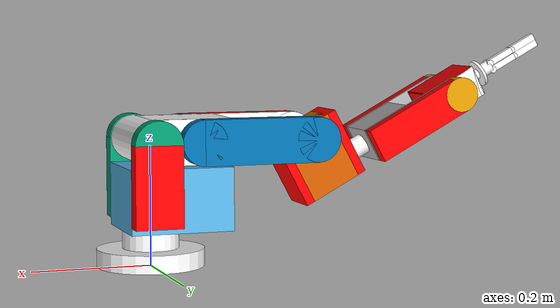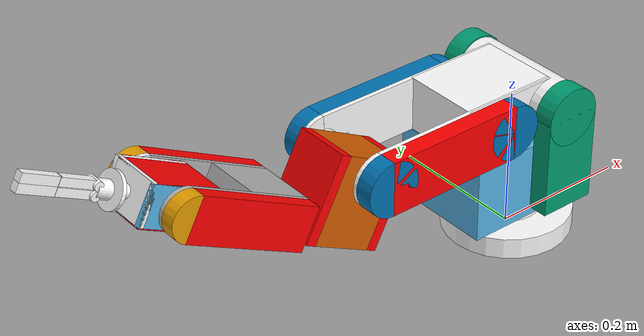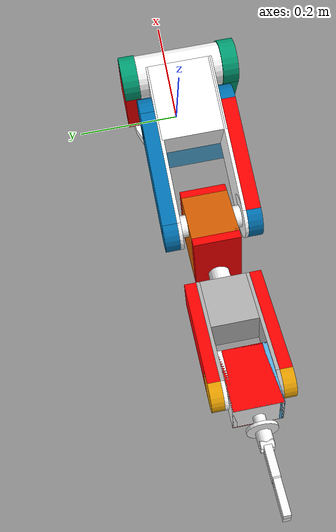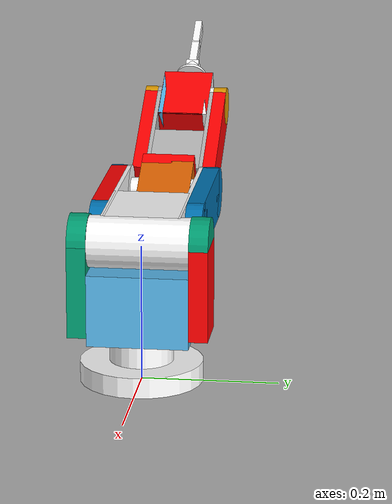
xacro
<?xml version="1.0"?>
<robot xmlns:xacro="http://www.ros.org/wiki/xacro" name="ruka_end_eff">

    <xacro:arg name="prefix" default="" />

    <xacro:arg name="initial_positions_file" default="initial_positions.yaml" />

    <!-- Import ruka urdf file -->
    <xacro:include filename="$(find ruka_end_eff)/config/ruka.urdf" />

    <!-- Import control_xacro -->
    <xacro:include filename="$(find ruka_end_eff)/config/ruka.ros2_control.xacro" />
    <xacro:include filename="$(find ruka_end_eff)/config/ruka_hand.ros2_control.xacro" />
    <xacro:include filename="$(find ruka_end_eff)/config/imu.ros2_control.xacro" />

    <xacro:ruka_ros2_control name="RukaSystemController" initial_positions_file="$(arg initial_positions_file)"/>

    <xacro:ruka_ros2_sensor
     name="RukaSensorSee" prefix="$(arg prefix)"
      />

     <xacro:ruka_hand_ros2_control name="RukaHandFakeSystem" initial_positions_file="$(arg initial_positions_file)"/>
</robot>

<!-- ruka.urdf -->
<robot name="ruka">

    <material name="white">
        <color rgba="1 1 1 1"/>
    </material>

    <material name="red">
        <color rgba="1 0 0 1"/>
    </material>

    <link name="base_link">
        <visual>
          <origin rpy="0 0 0" xyz="0 0 0.015" />
          <geometry>
            <cylinder radius="0.09" length="0.03" />
          </geometry>

        <material name="white"/>
        </visual>

        <collision>
            <origin rpy="0 0 0" xyz="0 0 0.015" />
          <geometry>
            <cylinder radius="0.09" length="0.03" />
          </geometry>
          </collision>

    </link>

    <joint name="base_link__link_01" type="revolute">
        <axis xyz="0 0 1"/>

        <safety_controller k_position="100.0" k_velocity="40.0" soft_lower_limit="-2.908" soft_upper_limit="2.908" />

        <limit effort="1000.0" lower="-2.96" upper="2.96" velocity="0.5"/>
        <origin rpy="0 0 0" xyz="0 0 0.03"/>
        <parent link="base_link"/>
        <child link="link_01"/>

    </joint>

    <link name="link_01">
        <visual>
            <origin rpy="0 0 0" xyz="0 0 0.016" />
            <geometry>
                <cylinder radius="0.047" length="0.032" />
            </geometry>
            <material name="white"/>

        </visual>

        <collision>
            <origin rpy="0 0 0" xyz="0 0 0.016" />
            <geometry>
                <cylinder radius="0.047" length="0.032" />
            </geometry>
          </collision>

        <visual>
            <origin rpy="0 0 0" xyz="-0.0365 0 0.085" />
            <geometry>
                <box size ="0.173 0.148 0.106"/>
            </geometry>

        </visual>

        <collision>
           <origin rpy="0 0 0" xyz="-0.0365 0 0.085" />
            <geometry>
                <box size ="0.173 0.148 0.106"/>
            </geometry>
          </collision>

    </link>

    <joint name="link_01__link_01_red" type="fixed">
        <origin rpy="0 0 0" xyz="0.01 0 0"/>
        <parent link="link_01"/>
        <child link="link_01_red"/>
    </joint>

    <link name="link_01_red">
        <visual>
            <origin rpy="0 0 0" xyz="0 0.088 0.1115" />
            <geometry>
                <box size ="0.08 0.028 0.135"/>
            </geometry>
            <material name="red"/>

        </visual>

        <collision>
            <origin rpy="0 0 0" xyz="0 0.088 0.1115" />
            <geometry>
                <box size ="0.08 0.028 0.135"/>
            </geometry>
          </collision>

        <visual>
            <origin rpy="0 0 0" xyz="0 -0.088 0.1115" />
            <geometry>
                <box size ="0.08 0.028 0.135"/>
            </geometry>

        </visual>

        <collision>
            <origin rpy="0 0 0" xyz="0 -0.088 0.1115" />
            <geometry>
                <box size ="0.08 0.028 0.135"/>
            </geometry>
          </collision>

        <visual>
            <origin rpy="1.57 0 0" xyz="0 -0.088 0.179" />
            <geometry>
                <cylinder radius="0.04" length="0.028"/>
            </geometry>

        </visual>

        <collision>
           <origin rpy="1.57 0 0" xyz="0 -0.088 0.179" />
            <geometry>
                <cylinder radius="0.04" length="0.028"/>
            </geometry>
          </collision>

        <visual>
            <origin rpy="1.57 0 0" xyz="0 0.088 0.179" />
            <geometry>
                <cylinder radius="0.04" length="0.028"/>
            </geometry>

        </visual>

        <collision>
           <origin rpy="1.57 0 0" xyz="0 0.088 0.179" />
            <geometry>
                <cylinder radius="0.04" length="0.028"/>
            </geometry>
          </collision>
    </link>

    <joint name="link_01__link_02" type="revolute">
        <axis xyz="0 0 1"/>

        <safety_controller k_position="100.0" k_velocity="40.0" soft_lower_limit="-3.518" soft_upper_limit="-0.052" />

        <limit effort="1000.0" lower="-3.57" upper="0" velocity="0.5"/>
        <origin rpy="1.57 -1.57 0" xyz="0.01 0 0.179"/>   <!-- origin rpy="1.57 0 0"-->
        <parent link="link_01"/>

        <child link="link_02"/>
    </joint>

    <link name="link_02">

        <visual>
            <origin rpy="0 0 0" xyz="0 0 0" />
            <geometry>
                <cylinder radius="0.038" length="0.148"/>
            </geometry>
            <material name="white"/>

        </visual>

        <collision>
             <origin rpy="0 0 0" xyz="0 0 0" />
            <geometry>
                <cylinder radius="0.038" length="0.148"/>
            </geometry>
          </collision>

        <visual>
            <origin rpy="0 0 0" xyz="0 0.06775 0" />
            <geometry>
                <box size ="0.076 0.1355 0.116"/>
            </geometry>
            <material name="white"/>

        </visual>

        <collision>
          <origin rpy="0 0 0" xyz="0 0.06775 0" />
            <geometry>
                <box size ="0.076 0.1355 0.116"/>
            </geometry>
          </collision>

        <visual>
            <origin rpy="0 1.57 0" xyz="0 0.14 0.055" />
            <geometry>
                <box size ="0.006 0.28 0.076"/>
            </geometry>
            <material name="white"/>

        </visual>

        <collision>
            <origin rpy="0 1.57 0" xyz="0 0.14 0.055" />
            <geometry>
                <box size ="0.006 0.28 0.076"/>
            </geometry>
          </collision>

        <visual>
            <origin rpy="0 1.57 0" xyz="0 0.14 -0.055" />
            <geometry>
                <box size ="0.006 0.28 0.076"/>
            </geometry>
            <material name="white"/>

        </visual>

        <collision>
            <origin rpy="0 1.57 0" xyz="0 0.14 -0.055" />
            <geometry>
                <box size ="0.006 0.28 0.076"/>
            </geometry>
          </collision>

        <visual>
            <origin rpy="0 0 0" xyz="0 0.28 -0.055" />
            <geometry>
                <cylinder radius="0.038" length="0.006"/>
            </geometry>
            <material name="white"/>

        </visual>

        <collision>
            <origin rpy="0 0 0" xyz="0 0.28 -0.055" />
            <geometry>
                <cylinder radius="0.038" length="0.006"/>
            </geometry>
          </collision>

        <visual>
            <origin rpy="0 0 0" xyz="0 0.28 0.055" />
            <geometry>
                <cylinder radius="0.038" length="0.006"/>
            </geometry>
            <material name="white"/>

        </visual>

        <collision>
            <origin rpy="0 0 0" xyz="0 0.28 0.055" />
            <geometry>
                <cylinder radius="0.038" length="0.006"/>
            </geometry>
          </collision>

    </link>

    <joint name="link_02__link_02_red" type="fixed">
        <origin rpy="0 0 0" xyz="0 0.181 0"/>
        <parent link="link_02"/>
        <child link="link_02_red"/>
    </joint>

    <link name="link_02_red">
        <visual>
            <origin rpy="0 0 0" xyz="0 0 0.0705" />
            <geometry>
                <box size ="0.076 0.198 0.025"/>
            </geometry>
            <material name="red"/>

        </visual>

        <collision>
            <origin rpy="0 0 0" xyz="0 0 0.0705" />
            <geometry>
                <box size ="0.076 0.198 0.025"/>
            </geometry>
          </collision>

        <visual>
            <origin rpy="0 0 0" xyz="0 0 -0.0705" />
            <geometry>
                <box size ="0.076 0.198 0.025"/>
            </geometry>

        </visual>

        <collision>
            <origin rpy="0 0 0" xyz="0 0 -0.0705" />
            <geometry>
                <box size ="0.076 0.198 0.025"/>
            </geometry>
          </collision>

        <visual>
            <origin rpy="0 0 0" xyz="0 -0.099 0.0705" />
            <geometry>
                <cylinder radius="0.038" length="0.025"/>
            </geometry>

        </visual>

        <collision>
            <origin rpy="0 0 0" xyz="0 -0.099 0.0705" />
            <geometry>
                <cylinder radius="0.038" length="0.025"/>
            </geometry>

          </collision>

        <visual>
            <origin rpy="0 0 0" xyz="0 0.099 0.0705" />
            <geometry>
                <cylinder radius="0.038" length="0.025"/>
            </geometry>

        </visual>

        <collision>
            <origin rpy="0 0 0" xyz="0 0.099 0.0705" />
            <geometry>
                <cylinder radius="0.038" length="0.025"/>
            </geometry>
          </collision>

        <visual>
            <origin rpy="0 0 0" xyz="0 -0.099 -0.0705" />
            <geometry>
                <cylinder radius="0.038" length="0.025"/>
            </geometry>

        </visual>

        <collision>
            <origin rpy="0 0 0" xyz="0 -0.099 -0.0705" />
            <geometry>
                <cylinder radius="0.038" length="0.025"/>
            </geometry>
          </collision>

        <visual>
            <origin rpy="0 0 0" xyz="0 0.099 -0.0705" />
            <geometry>
                <cylinder radius="0.038" length="0.025"/>
            </geometry>

        </visual>

        <collision>
             <origin rpy="0 0 0" xyz="0 0.099 -0.0705" />
            <geometry>
                <cylinder radius="0.038" length="0.025"/>
            </geometry>

          </collision>

    </link>

    <joint name="link_02__link_03" type="revolute">
        <axis xyz="0 0 1"/>

        <safety_controller k_position="100.0" k_velocity="40.0" soft_lower_limit="0.067" soft_upper_limit="5.178" />

        <limit effort="1000.0" lower="0.035" upper="5.23" velocity="0.5"/>
        <origin rpy="0 0 0.0175" xyz="0 0.28 0"/>
        <parent link="link_02"/>
        <child link="link_03"/>
    </joint>

    <link name="link_03">
        <visual>
            <origin rpy="0 0 0" xyz="0 0 0" />
            <geometry>
                <cylinder radius="0.019" length="0.104" />
            </geometry>
            <material name="white"/>
        </visual>

        <collision>
            <origin rpy="0 0 0" xyz="0 0 0" />
            <geometry>
                <cylinder radius="0.019" length="0.104" />
            </geometry>
          </collision>

        <visual>
            <origin rpy="0 0 0" xyz="0.04 0 0" />
            <geometry>
                <box size ="0.120 0.090 0.08"/>
            </geometry>

        </visual>

        <collision>
            <origin rpy="0 0 0" xyz="0.04 0 0" />
            <geometry>
                <box size ="0.120 0.090 0.08"/>
            </geometry>
          </collision>

    </link>

    <joint name="link_03__link_03_red" type="fixed">
        <origin rpy="0 0 0" xyz="0.04 0 0"/>
        <parent link="link_03"/>
        <child link="link_03_red"/>
    </joint>

    <link name="link_03_red">

       <visual>
            <origin rpy="0 0 0" xyz="0 0.05 0" />
            <geometry>
                <box size ="0.120 0.020 0.08"/>
            </geometry>
            <material name="red"/>

        </visual>

        <collision>
           <origin rpy="0 0 0" xyz="0 0.05 0" />
            <geometry>
                <box size ="0.120 0.020 0.08"/>
            </geometry>
          </collision>

        <visual>
            <origin rpy="0 0 0" xyz="0 -0.05 0" />
            <geometry>
                <box size ="0.120 0.020 0.08"/>
            </geometry>
            <material name="red"/>

        </visual>

        <collision>
            <origin rpy="0 0 0" xyz="0 -0.05 0" />
            <geometry>
                <box size ="0.120 0.020 0.08"/>
            </geometry>
          </collision>

    </link>

    <joint name="link_03__link_04" type="revolute">
        <axis xyz="0 0 1"/>

        <safety_controller k_position="100.0" k_velocity="40.0" soft_lower_limit="-2.818" soft_upper_limit="2.818" />

        <limit effort="1000.0" lower="-2.87" upper="2.87" velocity="0.5"/>
        <origin rpy="1.57 0 0" xyz="0.068 0 0"/>
        <parent link="link_03"/>
        <child link="link_04"/>
    </joint>

    <link name="link_04">
        <visual>
            <origin rpy="0 0 0" xyz="0 0 0.0455" />
            <geometry>
                <cylinder radius="0.018" length="0.091" />
            </geometry>

            <material name="white"/>

        </visual>

        <collision>
             <origin rpy="0 0 0" xyz="0 0 0.0455" />
            <geometry>
                <cylinder radius="0.018" length="0.091" />
            </geometry>

          </collision>

        <visual>
            <origin rpy="0 0 0" xyz="0 0 0.135" />
            <geometry>
                <box size ="0.06 0.078 0.088"/>
            </geometry>

        </visual>

        <collision>
            <origin rpy="0 0 0" xyz="0 0 0.135" />
            <geometry>
                <box size ="0.06 0.078 0.088"/>
            </geometry>
          </collision>

        <visual>
            <origin rpy="0 0 0" xyz="0 0.042 0.181" />
            <geometry>
                <box size ="0.06 0.006 0.18"/>
            </geometry>

        </visual>

        <collision>
            <origin rpy="0 0 0" xyz="0 0.042 0.181" />
            <geometry>
                <box size ="0.06 0.006 0.18"/>
            </geometry>
          </collision>

        <visual>
            <origin rpy="0 0 0" xyz="0 -0.042 0.181" />
            <geometry>
                <box size ="0.06 0.006 0.18"/>
            </geometry>

        </visual>

        <collision>
            <origin rpy="0 0 0" xyz="0 -0.042 0.181" />
            <geometry>
                <box size ="0.06 0.006 0.18"/>
            </geometry>
          </collision>

        <visual>
            <origin rpy="1.57 0 0" xyz="0 0.042 0.271" />
            <geometry>
                <cylinder radius="0.03" length="0.006" />
            </geometry>

        </visual>

        <collision>
            <origin rpy="1.57 0 0" xyz="0 0.042 0.271" />
            <geometry>
                <cylinder radius="0.03" length="0.006" />
            </geometry>
          </collision>

        <visual>
            <origin rpy="1.57 0 0" xyz="0 -0.042 0.271" />
            <geometry>
                <cylinder radius="0.03" length="0.006" />
            </geometry>

            <material name="white"/>

        </visual>

        <collision>
            <origin rpy="1.57 0 0" xyz="0 -0.042 0.271" />
            <geometry>
                <cylinder radius="0.03" length="0.006" />
            </geometry>
          </collision>

    </link>

    <joint name="link_04__link_04_red" type="fixed">
        <origin rpy="0 0 0" xyz="0 0 0.181"/>
        <parent link="link_04"/>
        <child link="link_04_red"/>
    </joint>

    <link name="link_04_red">

       <visual>
            <origin rpy="0 1.57 0" xyz="0 0.055 0" />
            <geometry>
                <box size ="0.18 0.020 0.06"/>
            </geometry>
            <material name="red"/>

        </visual>

        <collision>
            <origin rpy="0 1.57 0" xyz="0 0.055 0" />
            <geometry>
                <box size ="0.18 0.020 0.06"/>
            </geometry>
          </collision>

        <visual>
            <origin rpy="0 1.57 0" xyz="0 -0.055 0" />
            <geometry>
                <box size ="0.18 0.020 0.06"/>
            </geometry>
            <material name="red"/>

        </visual>

        <collision>
            <origin rpy="0 1.57 0" xyz="0 -0.055 0" />
            <geometry>
                <box size ="0.18 0.020 0.06"/>
            </geometry>
          </collision>

        <visual>
            <origin rpy="1.57 0 0" xyz="0 -0.055 0.09" />
            <geometry>
                <cylinder radius="0.03" length="0.02" />
            </geometry>

        </visual>

        <collision>
            <origin rpy="1.57 0 0" xyz="0 -0.055 0.09" />
            <geometry>
                <cylinder radius="0.03" length="0.02" />
            </geometry>
          </collision>

        <visual>
            <origin rpy="1.57 0 0" xyz="0 0.055 0.09" />
            <geometry>
                <cylinder radius="0.03" length="0.02" />
            </geometry>

        </visual>

        <collision>
            <origin rpy="1.57 0 0" xyz="0 0.055 0.09" />
            <geometry>
                <cylinder radius="0.03" length="0.02" />
            </geometry>
          </collision>

    </link>

    <joint name="link_04__link_05" type="revolute">
        <axis xyz="0 0 1"/>

        <safety_controller k_position="100.0" k_velocity="40.0" soft_lower_limit="-2.388" soft_upper_limit="2.388" />

        <limit effort="1000.0" lower="-2.44" upper="2.44" velocity="0.5"/>
        <origin rpy="-1.57 0 0" xyz="0 0 0.271"/>
        <parent link="link_04"/>
        <child link="link_05"/>
    </joint>

    <link name="link_05">
        <visual>
            <origin rpy="0 0 0" xyz="0 0 0" />
            <geometry>
                <cylinder radius="0.0175" length="0.078" />
            </geometry>

            <material name="white"/>
        </visual>

        <collision>
            <origin rpy="0 0 0" xyz="0 0 0" />
            <geometry>
                <cylinder radius="0.0175" length="0.078" />
            </geometry>
          </collision>

        <visual>
            <origin rpy="0 0 0" xyz="0 0 0.0355" />
            <geometry>
                <box size ="0.055 0.1 0.007"/>
            </geometry>

        </visual>

        <collision>
            <origin rpy="0 0 0" xyz="0 0 0.0355" />
            <geometry>
                <box size ="0.055 0.1 0.007"/>
            </geometry>
          </collision>

        <visual>
            <origin rpy="0 0 0" xyz="0 0 -0.0355" />
            <geometry>
                <box size ="0.055 0.1 0.007"/>
            </geometry>
            <material name="white"/>

        </visual>

        <collision>
            <origin rpy="0 0 0" xyz="0 0 -0.0355" />
            <geometry>
                <box size ="0.055 0.1 0.007"/>
            </geometry>
          </collision>

        <visual>
            <origin rpy="0 0 0" xyz="0 -0.0465 0" />
            <geometry>
                <box size ="0.055 0.007 0.078"/>
            </geometry>
            <material name="white"/>

        </visual>

        <collision>
            <origin rpy="0 0 0" xyz="0 -0.0465 0" />
            <geometry>
                <box size ="0.055 0.007 0.078"/>
            </geometry>
          </collision>

    </link>

    <joint name="link_05__link_05_red" type="fixed">
        <origin rpy="0 0 0" xyz="0 0.05 0"/>
        <parent link="link_05"/>
        <child link="link_05_red"/>
    </joint>

    <link name="link_05_red">

       <visual>
            <origin rpy="0 0 0" xyz="0 -0.00075 0" />
            <geometry>
                <box size ="0.055 0.0015 0.078"/>
            </geometry>
            <material name="red"/>

        </visual>

        <collision>
            <origin rpy="0 0 0" xyz="0 -0.00075 0" />
            <geometry>
                <box size ="0.055 0.0015 0.078"/>
            </geometry>
          </collision>

        <visual>
            <origin rpy="0 0 0" xyz="0.02675 -0.05 0" />
            <geometry>
                <box size ="0.0015 0.1 0.078"/>
            </geometry>
            <material name="red"/>

        </visual>

        <collision>
            <origin rpy="0 0 0" xyz="0.02675 -0.05 0" />
            <geometry>
                <box size ="0.0015 0.1 0.078"/>
            </geometry>
          </collision>

        <visual>
            <origin rpy="0 0 0" xyz="-0.02675 -0.05 0" />
            <geometry>
                <box size ="0.0015 0.1 0.078"/>
            </geometry>
            <material name="red"/>

        </visual>

        <collision>
            <origin rpy="0 0 0" xyz="-0.02675 -0.05 0" />
            <geometry>
                <box size ="0.0015 0.1 0.078"/>
            </geometry>
          </collision>

    </link>

    <joint name="link_05__link_06" type="revolute">
        <axis xyz="0 0 1"/>

        <safety_controller k_position="100.0" k_velocity="40.0" soft_lower_limit="-3.12" soft_upper_limit="3.12" />

        <limit effort="1000.0" lower="-3.14" upper="3.14" velocity="0.5"/>
        <origin rpy="1.57 0 0" xyz="0 -0.0766 0"/>
        <parent link="link_05"/>
        <child link="link_06"/>
    </joint>

    <link name="link_06">
        <visual>
            <origin rpy="0 0 0" xyz="0 0 -0.0159" />
            <geometry>
                <cylinder radius="0.0095" length="0.0168" />
            </geometry>
            <material name="white"/>
        </visual>

        <collision>
            <origin rpy="0 0 0" xyz="0 0 -0.0159" />
            <geometry>
                <cylinder radius="0.0095" length="0.0168" />
            </geometry>

          </collision>

        <visual>
            <origin rpy="0 0 0" xyz="0 0 -0.005" />
            <geometry>
                <cylinder radius="0.024" length="0.005" />
            </geometry>
            <material name="white"/>

        </visual>

        <collision>
            <origin rpy="0 0 0" xyz="0 0 -0.005" />
            <geometry>
                <cylinder radius="0.024" length="0.005" />
            </geometry>

          </collision>
    </link>

    <joint name="link_06__link_hand_1" type="fixed">
        <origin rpy="0 0 0" xyz="0 0 0"/>
        <parent link="link_06"/>
        <child link="link_hand_1"/>
    </joint>

    <link name="link_hand_1">
        <visual>
            <origin rpy="0 0 0" xyz="0 0 0.01" />
            <geometry>
                <cylinder radius="0.012" length="0.02" />
            </geometry>
            <material name="white"/>
        </visual>

        <collision>
            <origin rpy="0 0 0" xyz="0 0 0.01" />
            <geometry>
                <cylinder radius="0.010" length="0.01" />
            </geometry>

          </collision>

        <visual>
            <origin rpy="1.57 0 0" xyz="0.0061 0 0.02" />
            <geometry>
                <cylinder radius="0.006" length="0.02" />
            </geometry>
            <material name="white"/>

        </visual>

        <visual>
            <origin rpy="1.57 0 0" xyz="-0.0061 0 0.02" />
            <geometry>
                <cylinder radius="0.006" length="0.02" />
            </geometry>
            <material name="white"/>

        </visual>

    </link>

    <joint name="link_hand_1__up_finger" type="revolute">
        <axis xyz="0 1 0"/>

        <safety_controller k_position="100.0" k_velocity="40.0" soft_lower_limit="0" soft_upper_limit="1.57" />

        <limit effort="1000.0" lower="0" upper="1.57" velocity="0.5"/>
        <origin rpy="0 0 0" xyz="0 0 0.02"/>
        <parent link="link_hand_1"/>
        <child link="up_finger"/>
    </joint>

    <link name ="up_finger">
        <visual>
            <origin rpy="0 0 0" xyz="0.006 0 0.025" />
            <geometry>
                <box size ="0.011 0.012 0.05"/>
            </geometry>
            <material name="white"/>

        </visual>

        <collision>
            <origin rpy="0 0 0" xyz="0.006 0 0.025" />
            <geometry>
                <box size ="0.011 0.011 0.05"/>
            </geometry>
          </collision>

    </link>

    <joint name="up_finger__up_finger_mim" type="revolute">
        <axis xyz="1 0 0"/>
        <limit effort="1000.0" lower="-3.14" upper="3.14" velocity="0.5"/>
        <origin rpy="0 0 1.57" xyz="-0.006 0 0.05"/>
        <parent link="down_finger"/>
        <child link="down_finger_mim"/>
        <mimic joint="link_hand_1__up_finger" multiplier="1" offset="0" />
    </joint>

    <link name="up_finger_mim">
        <visual>
            <origin rpy="0 1.57 0" xyz="0 0 0" />
            <geometry>
                <cylinder radius="0.006" length="0.011" />
            </geometry>
            <material name="white"/>
        </visual>

         <visual>
            <origin rpy="0 0 0" xyz="0 0 0.025" />
            <geometry>
                <box size ="0.011 0.012 0.05"/>
            </geometry>
            <material name="white"/>

        </visual>

        <collision>
            <origin rpy="0 0 0" xyz="0 0 0.025" />
            <geometry>
                <box size ="0.011 0.011 0.047"/>
            </geometry>
          </collision>

    </link>

    <joint name="up_finger__down_finger_mim" type="revolute">
        <axis xyz="1 0 0"/>
        <limit effort="1000.0" lower="-3.14" upper="3.14" velocity="0.5"/>
        <origin rpy="0 0 1.57" xyz="0.006 0 0.05"/>
        <parent link="up_finger"/>
        <child link="up_finger_mim"/>
        <mimic joint="link_hand_1__up_finger" multiplier="-1" offset="0" />
    </joint>

    <link name="down_finger_mim">
        <visual>
            <origin rpy="0 1.57 0" xyz="0 0 0" />
            <geometry>
                <cylinder radius="0.006" length="0.011" />
            </geometry>
            <material name="white"/>
        </visual>

         <visual>
            <origin rpy="0 0 0" xyz="0 0 0.025" />
            <geometry>
                <box size ="0.011 0.012 0.05"/>
            </geometry>
            <material name="white"/>

        </visual>

        <collision>
            <origin rpy="0 0 0" xyz="0 0 0.025" />
            <geometry>
                <box size ="0.011 0.011 0.04"/>
            </geometry>
          </collision>

    </link>

    <joint name="link_hand_1__down_finger" type="revolute">
        <axis xyz="0 1 0"/>
        <limit effort="1000.0" lower="-3.14" upper="3.14" velocity="0.5"/>
        <origin rpy="0 0 0" xyz="0 0 0.02"/>
        <parent link="link_hand_1"/>
        <child link="down_finger"/>
        <mimic joint="link_hand_1__up_finger" multiplier="-1" offset="0" />
    </joint>

     <link name ="down_finger">

          <visual>
            <origin rpy="0 0 0" xyz="-0.006 0 0.025" />
            <geometry>
                <box size ="0.011 0.012 0.05"/>
            </geometry>
            <material name="white"/>

        </visual>

        <collision>
            <origin rpy="0 0 0" xyz="-0.006 0 0.025" />
            <geometry>
                <box size ="0.011 0.011 0.047"/>
            </geometry>
          </collision>
    </link>

</robot>
